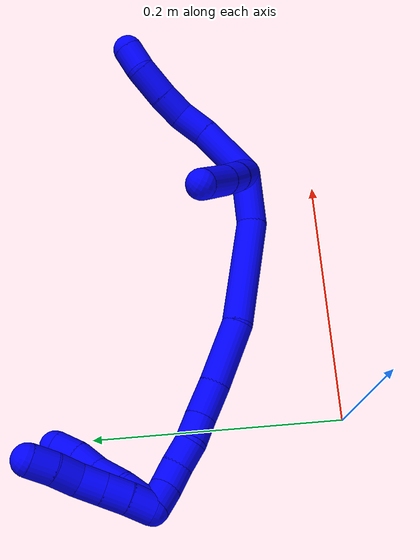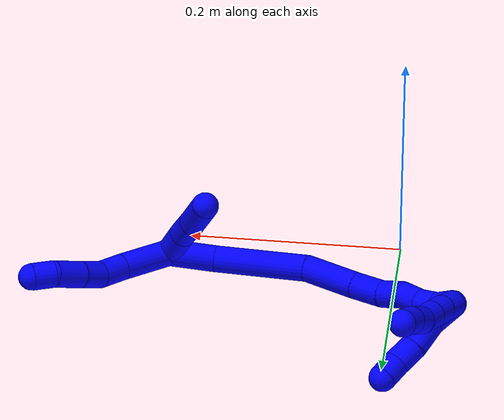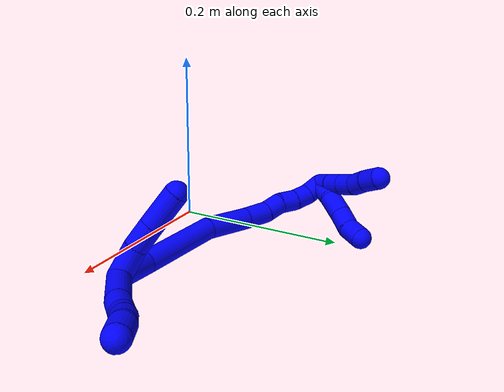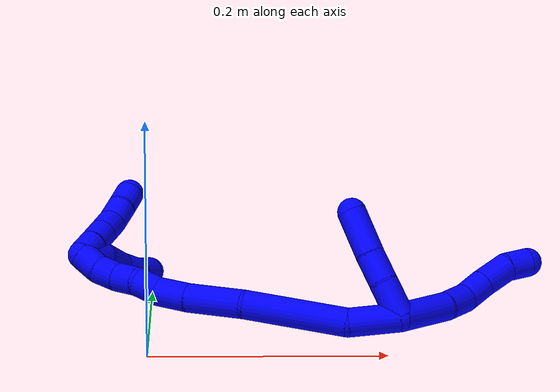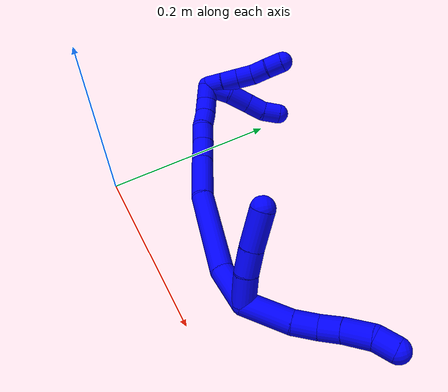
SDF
<sdf version="1.7">
 <world name="default">
  <model name="1">
   <static>0</static>
   <link name="1">
    <collision name="collision-cylinder-e_1_2_8">
     <pose>0.011599 0.005966 0.021505 -0.270613 0.479317 -0.066507</pose>
     <geometry><cylinder><radius>0.0125</radius><length>0.050303</length></cylinder></geometry>
     <surface>
      <friction><ode><mu>1.16</mu><mu2>1.16</mu2><slip1>0</slip1><slip2>0</slip2></ode></friction>
      <contact><ode><kp>1e+06</kp><kd>1</kd><max_vel>0</max_vel><min_depth>0.001</min_depth></ode></contact>
     </surface>
    </collision>
    <visual name="visual-cylinder-e_1_2_8">
     <pose>0.011599 0.005966 0.021505 -0.270613 0.479317 -0.066507</pose>
     <geometry><cylinder><radius>0.0125</radius><length>0.050303</length></cylinder></geometry>
     <material><ambient>0 0 1 1</ambient></material>
    </visual>
    <collision name="collision-cylinder-e_2_8_9">
     <pose>0.027056 0.014768 0.055056 -0.231201 0.302194 -0.035356</pose>
     <geometry><cylinder><radius>0.0125</radius><length>0.025927</length></cylinder></geometry>
     <surface>
      <friction><ode><mu>1.16</mu><mu2>1.16</mu2><slip1>0</slip1><slip2>0</slip2></ode></friction>
      <contact><ode><kp>1e+06</kp><kd>1</kd><max_vel>0</max_vel><min_depth>0.001</min_depth></ode></contact>
     </surface>
    </collision>
    <visual name="visual-cylinder-e_2_8_9">
     <pose>0.027056 0.014768 0.055056 -0.231201 0.302194 -0.035356</pose>
     <geometry><cylinder><radius>0.0125</radius><length>0.025927</length></cylinder></geometry>
     <material><ambient>0 0 1 1</ambient></material>
    </visual>
    <collision name="collision-cylinder-e_3_9_10">
     <pose>0.034257 0.01679 0.078123 0.073649 0.29376 0.010901</pose>
     <geometry><cylinder><radius>0.0125</radius><length>0.023089</length></cylinder></geometry>
     <surface>
      <friction><ode><mu>1.16</mu><mu2>1.16</mu2><slip1>0</slip1><slip2>0</slip2></ode></friction>
      <contact><ode><kp>1e+06</kp><kd>1</kd><max_vel>0</max_vel><min_depth>0.001</min_depth></ode></contact>
     </surface>
    </collision>
    <visual name="visual-cylinder-e_3_9_10">
     <pose>0.034257 0.01679 0.078123 0.073649 0.29376 0.010901</pose>
     <geometry><cylinder><radius>0.0125</radius><length>0.023089</length></cylinder></geometry>
     <material><ambient>0 0 1 1</ambient></material>
    </visual>
    <collision name="collision-cylinder-e_4_10_11">
     <pose>0.043127 0.014831 0.102792 0.083819 0.383552 0.016284</pose>
     <geometry><cylinder><radius>0.0125</radius><length>0.02954</length></cylinder></geometry>
     <surface>
      <friction><ode><mu>1.16</mu><mu2>1.16</mu2><slip1>0</slip1><slip2>0</slip2></ode></friction>
      <contact><ode><kp>1e+06</kp><kd>1</kd><max_vel>0</max_vel><min_depth>0.001</min_depth></ode></contact>
     </surface>
    </collision>
    <visual name="visual-cylinder-e_4_10_11">
     <pose>0.043127 0.014831 0.102792 0.083819 0.383552 0.016284</pose>
     <geometry><cylinder><radius>0.0125</radius><length>0.02954</length></cylinder></geometry>
     <material><ambient>0 0 1 1</ambient></material>
    </visual>
    <collision name="collision-cylinder-e_5_11_6">
     <pose>0.055087 0.014957 0.124731 -0.152351 0.654203 -0.05178</pose>
     <geometry><cylinder><radius>0.0125</radius><length>0.021142</length></cylinder></geometry>
     <surface>
      <friction><ode><mu>1.16</mu><mu2>1.16</mu2><slip1>0</slip1><slip2>0</slip2></ode></friction>
      <contact><ode><kp>1e+06</kp><kd>1</kd><max_vel>0</max_vel><min_depth>0.001</min_depth></ode></contact>
     </surface>
    </collision>
    <visual name="visual-cylinder-e_5_11_6">
     <pose>0.055087 0.014957 0.124731 -0.152351 0.654203 -0.05178</pose>
     <geometry><cylinder><radius>0.0125</radius><length>0.021142</length></cylinder></geometry>
     <material><ambient>0 0 1 1</ambient></material>
    </visual>
    <collision name="collision-cylinder-e_1_2_12">
     <pose>-0.01083 -0.010741 0.006339 1.03765 -0.71507 -0.420342</pose>
     <geometry><cylinder><radius>0.0125</radius><length>0.033035</length></cylinder></geometry>
     <surface>
      <friction><ode><mu>1.16</mu><mu2>1.16</mu2><slip1>0</slip1><slip2>0</slip2></ode></friction>
      <contact><ode><kp>1e+06</kp><kd>1</kd><max_vel>0</max_vel><min_depth>0.001</min_depth></ode></contact>
     </surface>
    </collision>
    <visual name="visual-cylinder-e_1_2_12">
     <pose>-0.01083 -0.010741 0.006339 1.03765 -0.71507 -0.420342</pose>
     <geometry><cylinder><radius>0.0125</radius><length>0.033035</length></cylinder></geometry>
     <material><ambient>0 0 1 1</ambient></material>
    </visual>
    <collision name="collision-cylinder-e_2_12_13">
     <pose>-0.030745 -0.028788 0.018972 0.859666 -0.755527 -0.359886</pose>
     <geometry><cylinder><radius>0.0125</radius><length>0.0265</length></cylinder></geometry>
     <surface>
      <friction><ode><mu>1.16</mu><mu2>1.16</mu2><slip1>0</slip1><slip2>0</slip2></ode></friction>
      <contact><ode><kp>1e+06</kp><kd>1</kd><max_vel>0</max_vel><min_depth>0.001</min_depth></ode></contact>
     </surface>
    </collision>
    <visual name="visual-cylinder-e_2_12_13">
     <pose>-0.030745 -0.028788 0.018972 0.859666 -0.755527 -0.359886</pose>
     <geometry><cylinder><radius>0.0125</radius><length>0.0265</length></cylinder></geometry>
     <material><ambient>0 0 1 1</ambient></material>
    </visual>
    <collision name="collision-cylinder-e_3_13_5">
     <pose>-0.05322 -0.046878 0.035936 0.790721 -0.723209 -0.313118</pose>
     <geometry><cylinder><radius>0.0125</radius><length>0.040465</length></cylinder></geometry>
     <surface>
      <friction><ode><mu>1.16</mu><mu2>1.16</mu2><slip1>0</slip1><slip2>0</slip2></ode></friction>
      <contact><ode><kp>1e+06</kp><kd>1</kd><max_vel>0</max_vel><min_depth>0.001</min_depth></ode></contact>
     </surface>
    </collision>
    <visual name="visual-cylinder-e_3_13_5">
     <pose>-0.05322 -0.046878 0.035936 0.790721 -0.723209 -0.313118</pose>
     <geometry><cylinder><radius>0.0125</radius><length>0.040465</length></cylinder></geometry>
     <material><ambient>0 0 1 1</ambient></material>
    </visual>
    <collision name="collision-cylinder-e_1_2_14">
     <pose>-0.019396 0.001505 -0.010803 -3.00318 -1.05852 2.90569</pose>
     <geometry><cylinder><radius>0.0125</radius><length>0.044506</length></cylinder></geometry>
     <surface>
      <friction><ode><mu>1.16</mu><mu2>1.16</mu2><slip1>0</slip1><slip2>0</slip2></ode></friction>
      <contact><ode><kp>1e+06</kp><kd>1</kd><max_vel>0</max_vel><min_depth>0.001</min_depth></ode></contact>
     </surface>
    </collision>
    <visual name="visual-cylinder-e_1_2_14">
     <pose>-0.019396 0.001505 -0.010803 -3.00318 -1.05852 2.90569</pose>
     <geometry><cylinder><radius>0.0125</radius><length>0.044506</length></cylinder></geometry>
     <material><ambient>0 0 1 1</ambient></material>
    </visual>
    <collision name="collision-cylinder-e_2_14_15">
     <pose>-0.083534 0.002149 -0.030024 3.03973 -1.38389 -3.01871</pose>
     <geometry><cylinder><radius>0.0125</radius><length>0.091069</length></cylinder></geometry>
     <surface>
      <friction><ode><mu>1.16</mu><mu2>1.16</mu2><slip1>0</slip1><slip2>0</slip2></ode></friction>
      <contact><ode><kp>1e+06</kp><kd>1</kd><max_vel>0</max_vel><min_depth>0.001</min_depth></ode></contact>
     </surface>
    </collision>
    <visual name="visual-cylinder-e_2_14_15">
     <pose>-0.083534 0.002149 -0.030024 3.03973 -1.38389 -3.01871</pose>
     <geometry><cylinder><radius>0.0125</radius><length>0.091069</length></cylinder></geometry>
     <material><ambient>0 0 1 1</ambient></material>
    </visual>
    <collision name="collision-cylinder-e_3_15_16">
     <pose>-0.154032 0.005789 -0.039407 -1.78233 -1.39396 1.60616</pose>
     <geometry><cylinder><radius>0.0125</radius><length>0.052329</length></cylinder></geometry>
     <surface>
      <friction><ode><mu>1.16</mu><mu2>1.16</mu2><slip1>0</slip1><slip2>0</slip2></ode></friction>
      <contact><ode><kp>1e+06</kp><kd>1</kd><max_vel>0</max_vel><min_depth>0.001</min_depth></ode></contact>
     </surface>
    </collision>
    <visual name="visual-cylinder-e_3_15_16">
     <pose>-0.154032 0.005789 -0.039407 -1.78233 -1.39396 1.60616</pose>
     <geometry><cylinder><radius>0.0125</radius><length>0.052329</length></cylinder></geometry>
     <material><ambient>0 0 1 1</ambient></material>
    </visual>
    <collision name="collision-cylinder-e_4_16_17">
     <pose>-0.194413 0.012025 -0.040019 -1.36945 -1.45025 1.25274</pose>
     <geometry><cylinder><radius>0.0125</radius><length>0.029463</length></cylinder></geometry>
     <surface>
      <friction><ode><mu>1.16</mu><mu2>1.16</mu2><slip1>0</slip1><slip2>0</slip2></ode></friction>
      <contact><ode><kp>1e+06</kp><kd>1</kd><max_vel>0</max_vel><min_depth>0.001</min_depth></ode></contact>
     </surface>
    </collision>
    <visual name="visual-cylinder-e_4_16_17">
     <pose>-0.194413 0.012025 -0.040019 -1.36945 -1.45025 1.25274</pose>
     <geometry><cylinder><radius>0.0125</radius><length>0.029463</length></cylinder></geometry>
     <material><ambient>0 0 1 1</ambient></material>
    </visual>
    <collision name="collision-cylinder-e_5_17_18">
     <pose>-0.219759 0.012421 -0.038842 1.02012 -1.4252 -0.900534</pose>
     <geometry><cylinder><radius>0.0125</radius><length>0.021673</length></cylinder></geometry>
     <surface>
      <friction><ode><mu>1.16</mu><mu2>1.16</mu2><slip1>0</slip1><slip2>0</slip2></ode></friction>
      <contact><ode><kp>1e+06</kp><kd>1</kd><max_vel>0</max_vel><min_depth>0.001</min_depth></ode></contact>
     </surface>
    </collision>
    <visual name="visual-cylinder-e_5_17_18">
     <pose>-0.219759 0.012421 -0.038842 1.02012 -1.4252 -0.900534</pose>
     <geometry><cylinder><radius>0.0125</radius><length>0.021673</length></cylinder></geometry>
     <material><ambient>0 0 1 1</ambient></material>
    </visual>
    <collision name="collision-cylinder-e_6_18_19">
     <pose>-0.240629 0.013089 -0.036659 -0.975127 -1.33616 0.792616</pose>
     <geometry><cylinder><radius>0.0125</radius><length>0.020868</length></cylinder></geometry>
     <surface>
      <friction><ode><mu>1.16</mu><mu2>1.16</mu2><slip1>0</slip1><slip2>0</slip2></ode></friction>
      <contact><ode><kp>1e+06</kp><kd>1</kd><max_vel>0</max_vel><min_depth>0.001</min_depth></ode></contact>
     </surface>
    </collision>
    <visual name="visual-cylinder-e_6_18_19">
     <pose>-0.240629 0.013089 -0.036659 -0.975127 -1.33616 0.792616</pose>
     <geometry><cylinder><radius>0.0125</radius><length>0.020868</length></cylinder></geometry>
     <material><ambient>0 0 1 1</ambient></material>
    </visual>
    <collision name="collision-cylinder-e_7_19_20">
     <pose>-0.260694 0.015016 -0.03395 0.060242 -1.43546 -0.052599</pose>
     <geometry><cylinder><radius>0.0125</radius><length>0.020016</length></cylinder></geometry>
     <surface>
      <friction><ode><mu>1.16</mu><mu2>1.16</mu2><slip1>0</slip1><slip2>0</slip2></ode></friction>
      <contact><ode><kp>1e+06</kp><kd>1</kd><max_vel>0</max_vel><min_depth>0.001</min_depth></ode></contact>
     </surface>
    </collision>
    <visual name="visual-cylinder-e_7_19_20">
     <pose>-0.260694 0.015016 -0.03395 0.060242 -1.43546 -0.052599</pose>
     <geometry><cylinder><radius>0.0125</radius><length>0.020016</length></cylinder></geometry>
     <material><ambient>0 0 1 1</ambient></material>
    </visual>
    <collision name="collision-cylinder-e_8_20_1">
     <pose>-0.279877 0.012253 -0.029825 0.767924 -1.1761 -0.526249</pose>
     <geometry><cylinder><radius>0.0125</radius><length>0.020076</length></cylinder></geometry>
     <surface>
      <friction><ode><mu>1.16</mu><mu2>1.16</mu2><slip1>0</slip1><slip2>0</slip2></ode></friction>
      <contact><ode><kp>1e+06</kp><kd>1</kd><max_vel>0</max_vel><min_depth>0.001</min_depth></ode></contact>
     </surface>
    </collision>
    <visual name="visual-cylinder-e_8_20_1">
     <pose>-0.279877 0.012253 -0.029825 0.767924 -1.1761 -0.526249</pose>
     <geometry><cylinder><radius>0.0125</radius><length>0.020076</length></cylinder></geometry>
     <material><ambient>0 0 1 1</ambient></material>
    </visual>
    <collision name="collision-cylinder-e_1_1_21">
     <pose>-0.289188 0.010368 -0.017081 -0.079639 -0.004452 0.000177</pose>
     <geometry><cylinder><radius>0.0125</radius><length>0.02</length></cylinder></geometry>
     <surface>
      <friction><ode><mu>1.16</mu><mu2>1.16</mu2><slip1>0</slip1><slip2>0</slip2></ode></friction>
      <contact><ode><kp>1e+06</kp><kd>1</kd><max_vel>0</max_vel><min_depth>0.001</min_depth></ode></contact>
     </surface>
    </collision>
    <visual name="visual-cylinder-e_1_1_21">
     <pose>-0.289188 0.010368 -0.017081 -0.079639 -0.004452 0.000177</pose>
     <geometry><cylinder><radius>0.0125</radius><length>0.02</length></cylinder></geometry>
     <material><ambient>0 0 1 1</ambient></material>
    </visual>
    <collision name="collision-cylinder-e_2_21_22">
     <pose>-0.289721 0.012442 0.002794 -0.128371 -0.04892 0.003145</pose>
     <geometry><cylinder><radius>0.0125</radius><length>0.02</length></cylinder></geometry>
     <surface>
      <friction><ode><mu>1.16</mu><mu2>1.16</mu2><slip1>0</slip1><slip2>0</slip2></ode></friction>
      <contact><ode><kp>1e+06</kp><kd>1</kd><max_vel>0</max_vel><min_depth>0.001</min_depth></ode></contact>
     </surface>
    </collision>
    <visual name="visual-cylinder-e_2_21_22">
     <pose>-0.289721 0.012442 0.002794 -0.128371 -0.04892 0.003145</pose>
     <geometry><cylinder><radius>0.0125</radius><length>0.02</length></cylinder></geometry>
     <material><ambient>0 0 1 1</ambient></material>
    </visual>
    <collision name="collision-cylinder-e_3_22_23">
     <pose>-0.290705 0.014989 0.022606 -0.127332 -0.04945 0.003153</pose>
     <geometry><cylinder><radius>0.0125</radius><length>0.02</length></cylinder></geometry>
     <surface>
      <friction><ode><mu>1.16</mu><mu2>1.16</mu2><slip1>0</slip1><slip2>0</slip2></ode></friction>
      <contact><ode><kp>1e+06</kp><kd>1</kd><max_vel>0</max_vel><min_depth>0.001</min_depth></ode></contact>
     </surface>
    </collision>
    <visual name="visual-cylinder-e_3_22_23">
     <pose>-0.290705 0.014989 0.022606 -0.127332 -0.04945 0.003153</pose>
     <geometry><cylinder><radius>0.0125</radius><length>0.02</length></cylinder></geometry>
     <material><ambient>0 0 1 1</ambient></material>
    </visual>
    <collision name="collision-cylinder-e_4_23_24">
     <pose>-0.291546 0.014979 0.042425 0.128197 -0.034721 -0.002229</pose>
     <geometry><cylinder><radius>0.0125</radius><length>0.02</length></cylinder></geometry>
     <surface>
      <friction><ode><mu>1.16</mu><mu2>1.16</mu2><slip1>0</slip1><slip2>0</slip2></ode></friction>
      <contact><ode><kp>1e+06</kp><kd>1</kd><max_vel>0</max_vel><min_depth>0.001</min_depth></ode></contact>
     </surface>
    </collision>
    <visual name="visual-cylinder-e_4_23_24">
     <pose>-0.291546 0.014979 0.042425 0.128197 -0.034721 -0.002229</pose>
     <geometry><cylinder><radius>0.0125</radius><length>0.02</length></cylinder></geometry>
     <material><ambient>0 0 1 1</ambient></material>
    </visual>
    <collision name="collision-cylinder-e_5_24_4">
     <pose>-0.292921 0.013513 0.062282 0.018997 -0.102929 -0.000979</pose>
     <geometry><cylinder><radius>0.0125</radius><length>0.02</length></cylinder></geometry>
     <surface>
      <friction><ode><mu>1.16</mu><mu2>1.16</mu2><slip1>0</slip1><slip2>0</slip2></ode></friction>
      <contact><ode><kp>1e+06</kp><kd>1</kd><max_vel>0</max_vel><min_depth>0.001</min_depth></ode></contact>
     </surface>
    </collision>
    <visual name="visual-cylinder-e_5_24_4">
     <pose>-0.292921 0.013513 0.062282 0.018997 -0.102929 -0.000979</pose>
     <geometry><cylinder><radius>0.0125</radius><length>0.02</length></cylinder></geometry>
     <material><ambient>0 0 1 1</ambient></material>
    </visual>
    <collision name="collision-cylinder-e_1_1_25">
     <pose>-0.28465 0.017215 -0.015842 -0.59854 0.319892 -0.099467</pose>
     <geometry><cylinder><radius>0.0125</radius><length>0.02858</length></cylinder></geometry>
     <surface>
      <friction><ode><mu>1.16</mu><mu2>1.16</mu2><slip1>0</slip1><slip2>0</slip2></ode></friction>
      <contact><ode><kp>1e+06</kp><kd>1</kd><max_vel>0</max_vel><min_depth>0.001</min_depth></ode></contact>
     </surface>
    </collision>
    <visual name="visual-cylinder-e_1_1_25">
     <pose>-0.28465 0.017215 -0.015842 -0.59854 0.319892 -0.099467</pose>
     <geometry><cylinder><radius>0.0125</radius><length>0.02858</length></cylinder></geometry>
     <material><ambient>0 0 1 1</ambient></material>
    </visual>
    <collision name="collision-cylinder-e_2_25_26">
     <pose>-0.276885 0.035077 0.003856 -0.877476 0.241401 -0.113705</pose>
     <geometry><cylinder><radius>0.0125</radius><length>0.027366</length></cylinder></geometry>
     <surface>
      <friction><ode><mu>1.16</mu><mu2>1.16</mu2><slip1>0</slip1><slip2>0</slip2></ode></friction>
      <contact><ode><kp>1e+06</kp><kd>1</kd><max_vel>0</max_vel><min_depth>0.001</min_depth></ode></contact>
     </surface>
    </collision>
    <visual name="visual-cylinder-e_2_25_26">
     <pose>-0.276885 0.035077 0.003856 -0.877476 0.241401 -0.113705</pose>
     <geometry><cylinder><radius>0.0125</radius><length>0.027366</length></cylinder></geometry>
     <material><ambient>0 0 1 1</ambient></material>
    </visual>
    <collision name="collision-cylinder-e_3_26_27">
     <pose>-0.269388 0.052743 0.020083 -0.766433 0.37495 -0.152659</pose>
     <geometry><cylinder><radius>0.0125</radius><length>0.023079</length></cylinder></geometry>
     <surface>
      <friction><ode><mu>1.16</mu><mu2>1.16</mu2><slip1>0</slip1><slip2>0</slip2></ode></friction>
      <contact><ode><kp>1e+06</kp><kd>1</kd><max_vel>0</max_vel><min_depth>0.001</min_depth></ode></contact>
     </surface>
    </collision>
    <visual name="visual-cylinder-e_3_26_27">
     <pose>-0.269388 0.052743 0.020083 -0.766433 0.37495 -0.152659</pose>
     <geometry><cylinder><radius>0.0125</radius><length>0.023079</length></cylinder></geometry>
     <material><ambient>0 0 1 1</ambient></material>
    </visual>
    <collision name="collision-cylinder-e_4_27_3">
     <pose>-0.263756 0.06574 0.036605 -0.56325 0.134467 -0.038957</pose>
     <geometry><cylinder><radius>0.0125</radius><length>0.020975</length></cylinder></geometry>
     <surface>
      <friction><ode><mu>1.16</mu><mu2>1.16</mu2><slip1>0</slip1><slip2>0</slip2></ode></friction>
      <contact><ode><kp>1e+06</kp><kd>1</kd><max_vel>0</max_vel><min_depth>0.001</min_depth></ode></contact>
     </surface>
    </collision>
    <visual name="visual-cylinder-e_4_27_3">
     <pose>-0.263756 0.06574 0.036605 -0.56325 0.134467 -0.038957</pose>
     <geometry><cylinder><radius>0.0125</radius><length>0.020975</length></cylinder></geometry>
     <material><ambient>0 0 1 1</ambient></material>
    </visual>
    <collision name="collision-sphere-3">
     <pose>-0.26235 0.071289 0.045393 0 -0 0</pose>
     <geometry><sphere><radius>0.0125</radius></sphere></geometry>
     <surface>
      <friction><ode><mu>1.16</mu><mu2>1.16</mu2><slip1>0</slip1><slip2>0</slip2></ode></friction>
      <contact><ode><kp>1e+06</kp><kd>1</kd><max_vel>0</max_vel><min_depth>0.001</min_depth></ode></contact>
     </surface>
    </collision>
    <visual name="visual-sphere-3">
     <pose>-0.26235 0.071289 0.045393 0 -0 0</pose>
     <geometry><sphere><radius>0.0125</radius></sphere></geometry>
     <material><ambient>0 0 1 1</ambient></material>
    </visual>
    <collision name="collision-sphere-27">
     <pose>-0.265162 0.06019 0.027818 0 -0 0</pose>
     <geometry><sphere><radius>0.0125</radius></sphere></geometry>
     <surface>
      <friction><ode><mu>1.16</mu><mu2>1.16</mu2><slip1>0</slip1><slip2>0</slip2></ode></friction>
      <contact><ode><kp>1e+06</kp><kd>1</kd><max_vel>0</max_vel><min_depth>0.001</min_depth></ode></contact>
     </surface>
    </collision>
    <visual name="visual-sphere-27">
     <pose>-0.265162 0.06019 0.027818 0 -0 0</pose>
     <geometry><sphere><radius>0.0125</radius></sphere></geometry>
     <material><ambient>0 0 1 1</ambient></material>
    </visual>
    <collision name="collision-sphere-26">
     <pose>-0.273614 0.045296 0.012347 0 -0 0</pose>
     <geometry><sphere><radius>0.0125</radius></sphere></geometry>
     <surface>
      <friction><ode><mu>1.16</mu><mu2>1.16</mu2><slip1>0</slip1><slip2>0</slip2></ode></friction>
      <contact><ode><kp>1e+06</kp><kd>1</kd><max_vel>0</max_vel><min_depth>0.001</min_depth></ode></contact>
     </surface>
    </collision>
    <visual name="visual-sphere-26">
     <pose>-0.273614 0.045296 0.012347 0 -0 0</pose>
     <geometry><sphere><radius>0.0125</radius></sphere></geometry>
     <material><ambient>0 0 1 1</ambient></material>
    </visual>
    <collision name="collision-sphere-25">
     <pose>-0.280156 0.024858 -0.004635 0 -0 0</pose>
     <geometry><sphere><radius>0.0125</radius></sphere></geometry>
     <surface>
      <friction><ode><mu>1.16</mu><mu2>1.16</mu2><slip1>0</slip1><slip2>0</slip2></ode></friction>
      <contact><ode><kp>1e+06</kp><kd>1</kd><max_vel>0</max_vel><min_depth>0.001</min_depth></ode></contact>
     </surface>
    </collision>
    <visual name="visual-sphere-25">
     <pose>-0.280156 0.024858 -0.004635 0 -0 0</pose>
     <geometry><sphere><radius>0.0125</radius></sphere></geometry>
     <material><ambient>0 0 1 1</ambient></material>
    </visual>
    <collision name="collision-sphere-4">
     <pose>-0.293948 0.013324 0.072228 0 -0 0</pose>
     <geometry><sphere><radius>0.0125</radius></sphere></geometry>
     <surface>
      <friction><ode><mu>1.16</mu><mu2>1.16</mu2><slip1>0</slip1><slip2>0</slip2></ode></friction>
      <contact><ode><kp>1e+06</kp><kd>1</kd><max_vel>0</max_vel><min_depth>0.001</min_depth></ode></contact>
     </surface>
    </collision>
    <visual name="visual-sphere-4">
     <pose>-0.293948 0.013324 0.072228 0 -0 0</pose>
     <geometry><sphere><radius>0.0125</radius></sphere></geometry>
     <material><ambient>0 0 1 1</ambient></material>
    </visual>
    <collision name="collision-sphere-24">
     <pose>-0.291893 0.013702 0.052337 0 -0 0</pose>
     <geometry><sphere><radius>0.0125</radius></sphere></geometry>
     <surface>
      <friction><ode><mu>1.16</mu><mu2>1.16</mu2><slip1>0</slip1><slip2>0</slip2></ode></friction>
      <contact><ode><kp>1e+06</kp><kd>1</kd><max_vel>0</max_vel><min_depth>0.001</min_depth></ode></contact>
     </surface>
    </collision>
    <visual name="visual-sphere-24">
     <pose>-0.291893 0.013702 0.052337 0 -0 0</pose>
     <geometry><sphere><radius>0.0125</radius></sphere></geometry>
     <material><ambient>0 0 1 1</ambient></material>
    </visual>
    <collision name="collision-sphere-23">
     <pose>-0.291199 0.016257 0.032513 0 -0 0</pose>
     <geometry><sphere><radius>0.0125</radius></sphere></geometry>
     <surface>
      <friction><ode><mu>1.16</mu><mu2>1.16</mu2><slip1>0</slip1><slip2>0</slip2></ode></friction>
      <contact><ode><kp>1e+06</kp><kd>1</kd><max_vel>0</max_vel><min_depth>0.001</min_depth></ode></contact>
     </surface>
    </collision>
    <visual name="visual-sphere-23">
     <pose>-0.291199 0.016257 0.032513 0 -0 0</pose>
     <geometry><sphere><radius>0.0125</radius></sphere></geometry>
     <material><ambient>0 0 1 1</ambient></material>
    </visual>
    <collision name="collision-sphere-22">
     <pose>-0.29021 0.01372 0.012699 0 -0 0</pose>
     <geometry><sphere><radius>0.0125</radius></sphere></geometry>
     <surface>
      <friction><ode><mu>1.16</mu><mu2>1.16</mu2><slip1>0</slip1><slip2>0</slip2></ode></friction>
      <contact><ode><kp>1e+06</kp><kd>1</kd><max_vel>0</max_vel><min_depth>0.001</min_depth></ode></contact>
     </surface>
    </collision>
    <visual name="visual-sphere-22">
     <pose>-0.29021 0.01372 0.012699 0 -0 0</pose>
     <geometry><sphere><radius>0.0125</radius></sphere></geometry>
     <material><ambient>0 0 1 1</ambient></material>
    </visual>
    <collision name="collision-sphere-21">
     <pose>-0.289232 0.011163 -0.007112 0 -0 0</pose>
     <geometry><sphere><radius>0.0125</radius></sphere></geometry>
     <surface>
      <friction><ode><mu>1.16</mu><mu2>1.16</mu2><slip1>0</slip1><slip2>0</slip2></ode></friction>
      <contact><ode><kp>1e+06</kp><kd>1</kd><max_vel>0</max_vel><min_depth>0.001</min_depth></ode></contact>
     </surface>
    </collision>
    <visual name="visual-sphere-21">
     <pose>-0.289232 0.011163 -0.007112 0 -0 0</pose>
     <geometry><sphere><radius>0.0125</radius></sphere></geometry>
     <material><ambient>0 0 1 1</ambient></material>
    </visual>
    <collision name="collision-sphere-1">
     <pose>-0.289143 0.009572 -0.027049 0 -0 0</pose>
     <geometry><sphere><radius>0.0125</radius></sphere></geometry>
     <surface>
      <friction><ode><mu>1.16</mu><mu2>1.16</mu2><slip1>0</slip1><slip2>0</slip2></ode></friction>
      <contact><ode><kp>1e+06</kp><kd>1</kd><max_vel>0</max_vel><min_depth>0.001</min_depth></ode></contact>
     </surface>
    </collision>
    <visual name="visual-sphere-1">
     <pose>-0.289143 0.009572 -0.027049 0 -0 0</pose>
     <geometry><sphere><radius>0.0125</radius></sphere></geometry>
     <material><ambient>0 0 1 1</ambient></material>
    </visual>
    <collision name="collision-sphere-6">
     <pose>0.06152 0.01623 0.133023 0 -0 0</pose>
     <geometry><sphere><radius>0.0125</radius></sphere></geometry>
     <surface>
      <friction><ode><mu>1.16</mu><mu2>1.16</mu2><slip1>0</slip1><slip2>0</slip2></ode></friction>
      <contact><ode><kp>1e+06</kp><kd>1</kd><max_vel>0</max_vel><min_depth>0.001</min_depth></ode></contact>
     </surface>
    </collision>
    <visual name="visual-sphere-6">
     <pose>0.06152 0.01623 0.133023 0 -0 0</pose>
     <geometry><sphere><radius>0.0125</radius></sphere></geometry>
     <material><ambient>0 0 1 1</ambient></material>
    </visual>
    <collision name="collision-sphere-11">
     <pose>0.048654 0.013684 0.11644 0 -0 0</pose>
     <geometry><sphere><radius>0.0125</radius></sphere></geometry>
     <surface>
      <friction><ode><mu>1.16</mu><mu2>1.16</mu2><slip1>0</slip1><slip2>0</slip2></ode></friction>
      <contact><ode><kp>1e+06</kp><kd>1</kd><max_vel>0</max_vel><min_depth>0.001</min_depth></ode></contact>
     </surface>
    </collision>
    <visual name="visual-sphere-11">
     <pose>0.048654 0.013684 0.11644 0 -0 0</pose>
     <geometry><sphere><radius>0.0125</radius></sphere></geometry>
     <material><ambient>0 0 1 1</ambient></material>
    </visual>
    <collision name="collision-sphere-10">
     <pose>0.0376 0.015977 0.089143 0 -0 0</pose>
     <geometry><sphere><radius>0.0125</radius></sphere></geometry>
     <surface>
      <friction><ode><mu>1.16</mu><mu2>1.16</mu2><slip1>0</slip1><slip2>0</slip2></ode></friction>
      <contact><ode><kp>1e+06</kp><kd>1</kd><max_vel>0</max_vel><min_depth>0.001</min_depth></ode></contact>
     </surface>
    </collision>
    <visual name="visual-sphere-10">
     <pose>0.0376 0.015977 0.089143 0 -0 0</pose>
     <geometry><sphere><radius>0.0125</radius></sphere></geometry>
     <material><ambient>0 0 1 1</ambient></material>
    </visual>
    <collision name="collision-sphere-9">
     <pose>0.030914 0.017603 0.067103 0 -0 0</pose>
     <geometry><sphere><radius>0.0125</radius></sphere></geometry>
     <surface>
      <friction><ode><mu>1.16</mu><mu2>1.16</mu2><slip1>0</slip1><slip2>0</slip2></ode></friction>
      <contact><ode><kp>1e+06</kp><kd>1</kd><max_vel>0</max_vel><min_depth>0.001</min_depth></ode></contact>
     </surface>
    </collision>
    <visual name="visual-sphere-9">
     <pose>0.030914 0.017603 0.067103 0 -0 0</pose>
     <geometry><sphere><radius>0.0125</radius></sphere></geometry>
     <material><ambient>0 0 1 1</ambient></material>
    </visual>
    <collision name="collision-sphere-2">
     <geometry><sphere><radius>0.0125</radius></sphere></geometry>
     <surface>
      <friction><ode><mu>1.16</mu><mu2>1.16</mu2><slip1>0</slip1><slip2>0</slip2></ode></friction>
      <contact><ode><kp>1e+06</kp><kd>1</kd><max_vel>0</max_vel><min_depth>0.001</min_depth></ode></contact>
     </surface>
    </collision>
    <visual name="visual-sphere-2">
     <geometry><sphere><radius>0.0125</radius></sphere></geometry>
     <material><ambient>0 0 1 1</ambient></material>
    </visual>
    <collision name="collision-sphere-19">
     <pose>-0.250778 0.015097 -0.035298 0 -0 0</pose>
     <geometry><sphere><radius>0.0125</radius></sphere></geometry>
     <surface>
      <friction><ode><mu>1.16</mu><mu2>1.16</mu2><slip1>0</slip1><slip2>0</slip2></ode></friction>
      <contact><ode><kp>1e+06</kp><kd>1</kd><max_vel>0</max_vel><min_depth>0.001</min_depth></ode></contact>
     </surface>
    </collision>
    <visual name="visual-sphere-19">
     <pose>-0.250778 0.015097 -0.035298 0 -0 0</pose>
     <geometry><sphere><radius>0.0125</radius></sphere></geometry>
     <material><ambient>0 0 1 1</ambient></material>
    </visual>
    <collision name="collision-sphere-8">
     <pose>0.023198 0.011932 0.04301 0 -0 0</pose>
     <geometry><sphere><radius>0.0125</radius></sphere></geometry>
     <surface>
      <friction><ode><mu>1.16</mu><mu2>1.16</mu2><slip1>0</slip1><slip2>0</slip2></ode></friction>
      <contact><ode><kp>1e+06</kp><kd>1</kd><max_vel>0</max_vel><min_depth>0.001</min_depth></ode></contact>
     </surface>
    </collision>
    <visual name="visual-sphere-8">
     <pose>0.023198 0.011932 0.04301 0 -0 0</pose>
     <geometry><sphere><radius>0.0125</radius></sphere></geometry>
     <material><ambient>0 0 1 1</ambient></material>
    </visual>
    <collision name="collision-sphere-12">
     <pose>-0.02166 -0.021481 0.012677 0 -0 0</pose>
     <geometry><sphere><radius>0.0125</radius></sphere></geometry>
     <surface>
      <friction><ode><mu>1.16</mu><mu2>1.16</mu2><slip1>0</slip1><slip2>0</slip2></ode></friction>
      <contact><ode><kp>1e+06</kp><kd>1</kd><max_vel>0</max_vel><min_depth>0.001</min_depth></ode></contact>
     </surface>
    </collision>
    <visual name="visual-sphere-12">
     <pose>-0.02166 -0.021481 0.012677 0 -0 0</pose>
     <geometry><sphere><radius>0.0125</radius></sphere></geometry>
     <material><ambient>0 0 1 1</ambient></material>
    </visual>
    <collision name="collision-sphere-13">
     <pose>-0.039831 -0.036096 0.025267 0 -0 0</pose>
     <geometry><sphere><radius>0.0125</radius></sphere></geometry>
     <surface>
      <friction><ode><mu>1.16</mu><mu2>1.16</mu2><slip1>0</slip1><slip2>0</slip2></ode></friction>
      <contact><ode><kp>1e+06</kp><kd>1</kd><max_vel>0</max_vel><min_depth>0.001</min_depth></ode></contact>
     </surface>
    </collision>
    <visual name="visual-sphere-13">
     <pose>-0.039831 -0.036096 0.025267 0 -0 0</pose>
     <geometry><sphere><radius>0.0125</radius></sphere></geometry>
     <material><ambient>0 0 1 1</ambient></material>
    </visual>
    <collision name="collision-sphere-5">
     <pose>-0.06661 -0.05766 0.046604 0 -0 0</pose>
     <geometry><sphere><radius>0.0125</radius></sphere></geometry>
     <surface>
      <friction><ode><mu>1.16</mu><mu2>1.16</mu2><slip1>0</slip1><slip2>0</slip2></ode></friction>
      <contact><ode><kp>1e+06</kp><kd>1</kd><max_vel>0</max_vel><min_depth>0.001</min_depth></ode></contact>
     </surface>
    </collision>
    <visual name="visual-sphere-5">
     <pose>-0.06661 -0.05766 0.046604 0 -0 0</pose>
     <geometry><sphere><radius>0.0125</radius></sphere></geometry>
     <material><ambient>0 0 1 1</ambient></material>
    </visual>
    <collision name="collision-sphere-14">
     <pose>-0.038792 0.00301 -0.021606 0 -0 0</pose>
     <geometry><sphere><radius>0.0125</radius></sphere></geometry>
     <surface>
      <friction><ode><mu>1.16</mu><mu2>1.16</mu2><slip1>0</slip1><slip2>0</slip2></ode></friction>
      <contact><ode><kp>1e+06</kp><kd>1</kd><max_vel>0</max_vel><min_depth>0.001</min_depth></ode></contact>
     </surface>
    </collision>
    <visual name="visual-sphere-14">
     <pose>-0.038792 0.00301 -0.021606 0 -0 0</pose>
     <geometry><sphere><radius>0.0125</radius></sphere></geometry>
     <material><ambient>0 0 1 1</ambient></material>
    </visual>
    <collision name="collision-sphere-15">
     <pose>-0.128276 0.001289 -0.038441 0 -0 0</pose>
     <geometry><sphere><radius>0.0125</radius></sphere></geometry>
     <surface>
      <friction><ode><mu>1.16</mu><mu2>1.16</mu2><slip1>0</slip1><slip2>0</slip2></ode></friction>
      <contact><ode><kp>1e+06</kp><kd>1</kd><max_vel>0</max_vel><min_depth>0.001</min_depth></ode></contact>
     </surface>
    </collision>
    <visual name="visual-sphere-15">
     <pose>-0.128276 0.001289 -0.038441 0 -0 0</pose>
     <geometry><sphere><radius>0.0125</radius></sphere></geometry>
     <material><ambient>0 0 1 1</ambient></material>
    </visual>
    <collision name="collision-sphere-16">
     <pose>-0.179789 0.010289 -0.040374 0 -0 0</pose>
     <geometry><sphere><radius>0.0125</radius></sphere></geometry>
     <surface>
      <friction><ode><mu>1.16</mu><mu2>1.16</mu2><slip1>0</slip1><slip2>0</slip2></ode></friction>
      <contact><ode><kp>1e+06</kp><kd>1</kd><max_vel>0</max_vel><min_depth>0.001</min_depth></ode></contact>
     </surface>
    </collision>
    <visual name="visual-sphere-16">
     <pose>-0.179789 0.010289 -0.040374 0 -0 0</pose>
     <geometry><sphere><radius>0.0125</radius></sphere></geometry>
     <material><ambient>0 0 1 1</ambient></material>
    </visual>
    <collision name="collision-sphere-17">
     <pose>-0.209037 0.013761 -0.039665 0 -0 0</pose>
     <geometry><sphere><radius>0.0125</radius></sphere></geometry>
     <surface>
      <friction><ode><mu>1.16</mu><mu2>1.16</mu2><slip1>0</slip1><slip2>0</slip2></ode></friction>
      <contact><ode><kp>1e+06</kp><kd>1</kd><max_vel>0</max_vel><min_depth>0.001</min_depth></ode></contact>
     </surface>
    </collision>
    <visual name="visual-sphere-17">
     <pose>-0.209037 0.013761 -0.039665 0 -0 0</pose>
     <geometry><sphere><radius>0.0125</radius></sphere></geometry>
     <material><ambient>0 0 1 1</ambient></material>
    </visual>
    <collision name="collision-sphere-18">
     <pose>-0.230481 0.011081 -0.03802 0 -0 0</pose>
     <geometry><sphere><radius>0.0125</radius></sphere></geometry>
     <surface>
      <friction><ode><mu>1.16</mu><mu2>1.16</mu2><slip1>0</slip1><slip2>0</slip2></ode></friction>
      <contact><ode><kp>1e+06</kp><kd>1</kd><max_vel>0</max_vel><min_depth>0.001</min_depth></ode></contact>
     </surface>
    </collision>
    <visual name="visual-sphere-18">
     <pose>-0.230481 0.011081 -0.03802 0 -0 0</pose>
     <geometry><sphere><radius>0.0125</radius></sphere></geometry>
     <material><ambient>0 0 1 1</ambient></material>
    </visual>
    <collision name="collision-sphere-20">
     <pose>-0.270611 0.014935 -0.032602 0 -0 0</pose>
     <geometry><sphere><radius>0.0125</radius></sphere></geometry>
     <surface>
      <friction><ode><mu>1.16</mu><mu2>1.16</mu2><slip1>0</slip1><slip2>0</slip2></ode></friction>
      <contact><ode><kp>1e+06</kp><kd>1</kd><max_vel>0</max_vel><min_depth>0.001</min_depth></ode></contact>
     </surface>
    </collision>
    <visual name="visual-sphere-20">
     <pose>-0.270611 0.014935 -0.032602 0 -0 0</pose>
     <geometry><sphere><radius>0.0125</radius></sphere></geometry>
     <material><ambient>0 0 1 1</ambient></material>
    </visual>
    <inertial>
     <pose>-0.13098 0.008257 0.007941 0 -0 0</pose>
     <mass>0.75</mass>
     <inertia><ixx>6e-06</ixx><ixy>0</ixy><ixz>0</ixz><iyy>0.000144</iyy><iyz>0</iyz><izz>0.000116</izz></inertia>
    </inertial>
   </link>
   <pose>0.212532 0.057329 0.016612 -1.19554 0.16724 -0.419644</pose>
  </model>
 </world>
</sdf>
